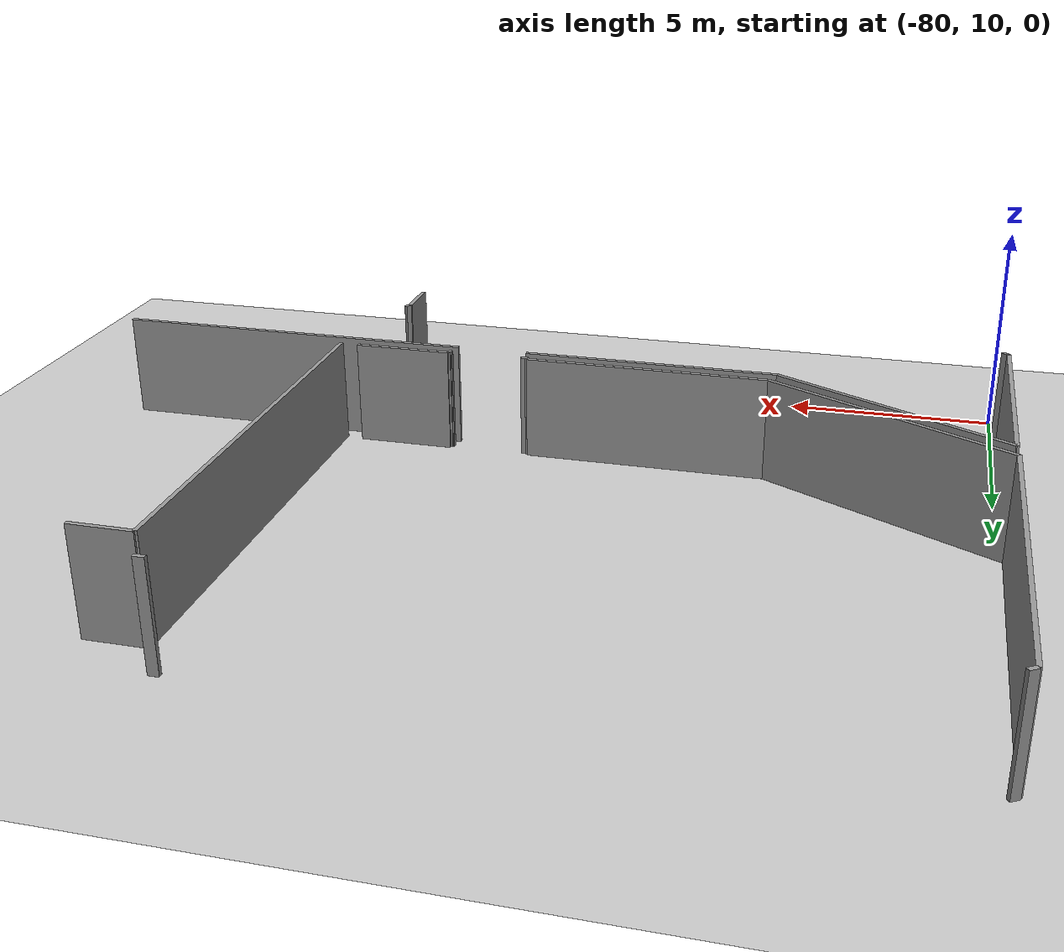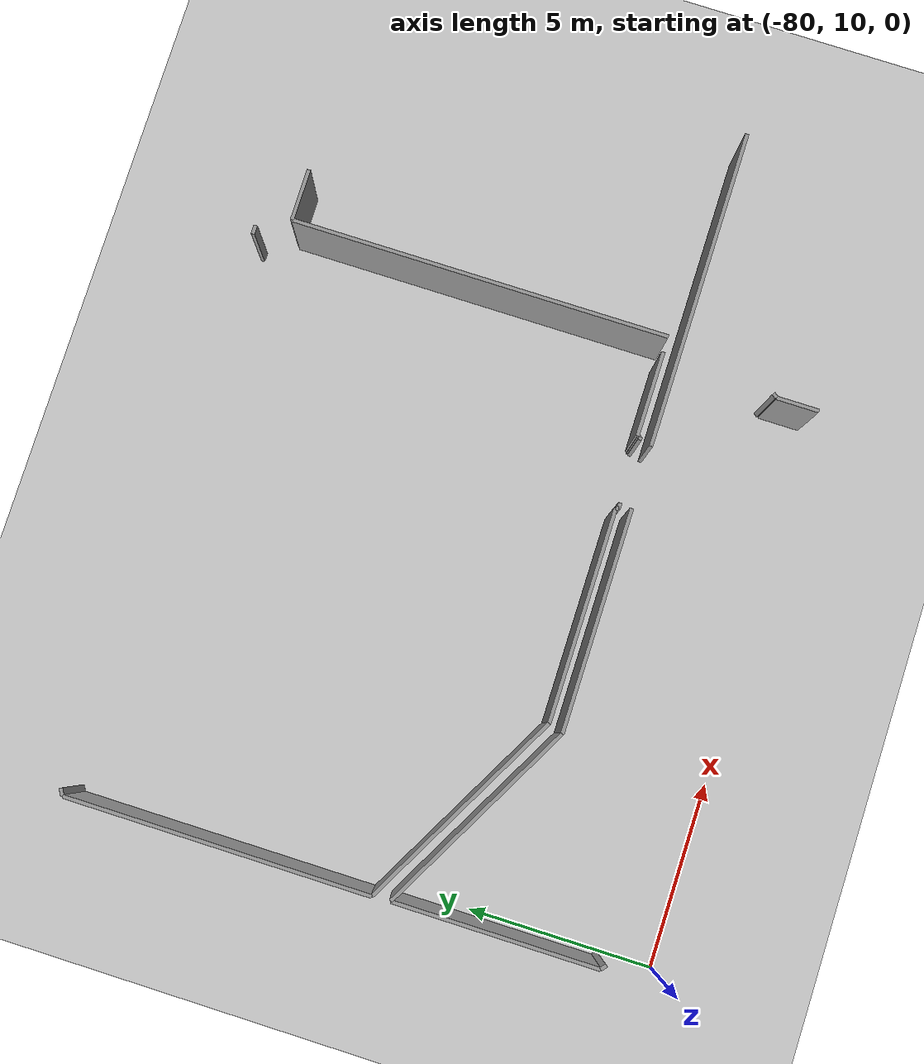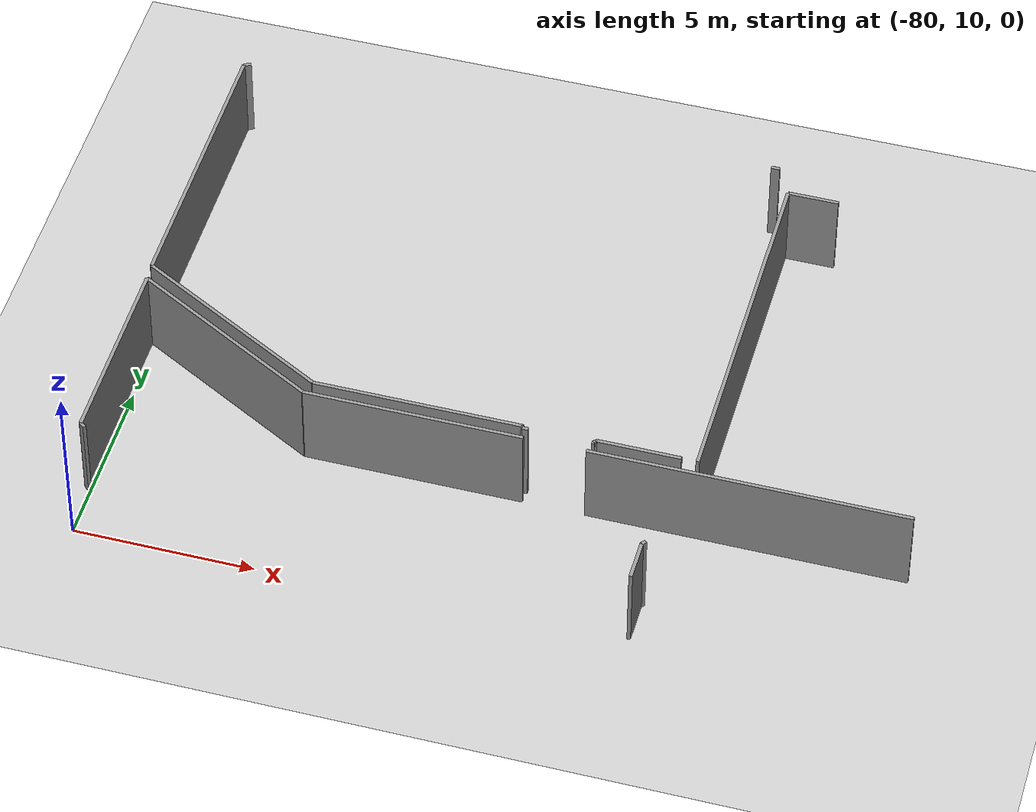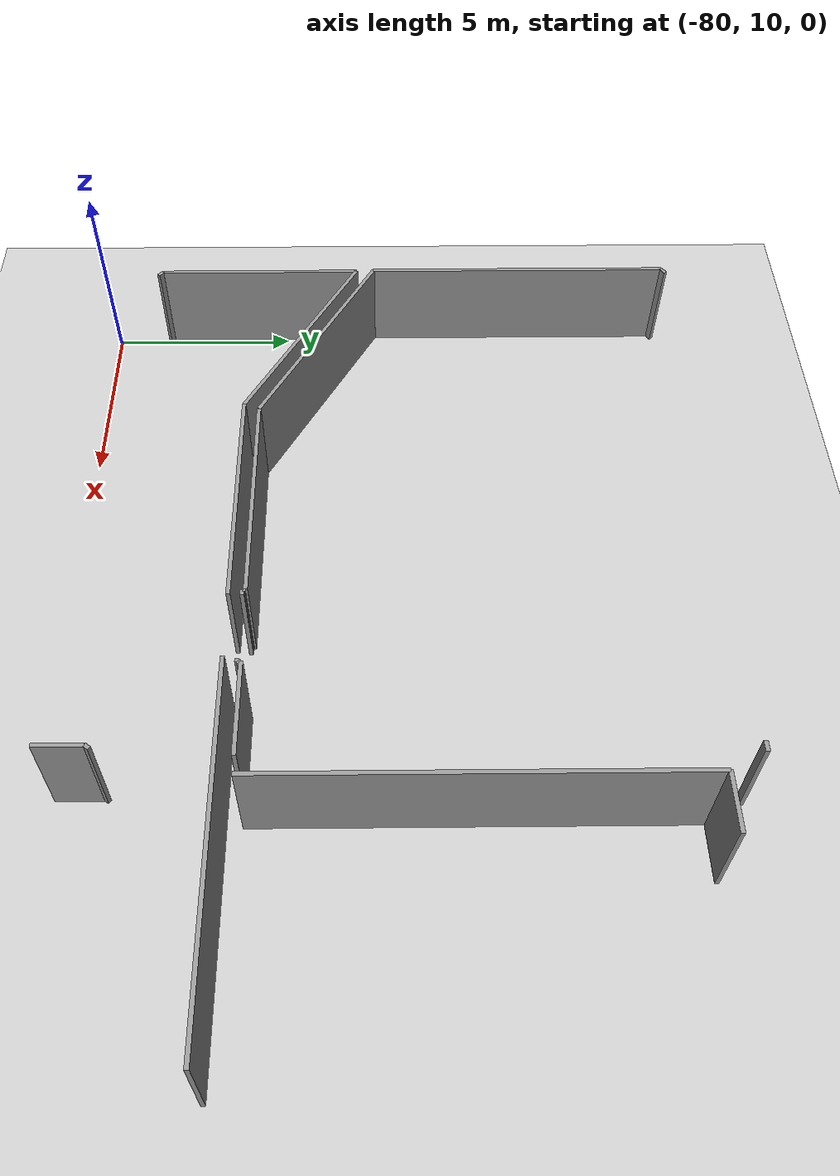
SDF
<sdf version="1.6">
 <world name="default">
  <model name="ground_plane">
   <static>1</static>
   <link name="link">
    <collision name="collision">
     <geometry><plane><normal>0 0 1</normal><size>100 100</size></plane></geometry>
     <surface><friction><ode><mu>100</mu><mu2>50</mu2></ode></friction></surface>
    </collision>
    <visual name="visual">
     <cast_shadows>0</cast_shadows>
     <geometry><plane><normal>0 0 1</normal><size>100 100</size></plane></geometry>
     <material>
      <script><uri>file://media/materials/scripts/gazebo.material</uri><name>Gazebo/Grey</name></script>
     </material>
    </visual>
   </link>
  </model>
  <model name="0510035737_A_40_1_105">
   <static>1</static>
   <link name="Wall_0">
    <collision name="Wall_0_Collision">
     <geometry><box><size>8.16879031489 0.1 2.5</size></box></geometry>
     <pose>4.08439515745 0 1.25 0 0 0</pose>
    </collision>
    <visual name="Wall_0_Visual">
     <pose>4.08439515745 0 1.25 0 0 0</pose>
     <geometry><box><size>8.16879031489 0.1 2.5</size></box></geometry>
     <material>
      <script><uri>file://media/materials/scripts/gazebo.material</uri><name>Gazebo/Grey</name></script>
      <ambient>1 1 1 1</ambient>
     </material>
    </visual>
    <pose>0.00254202281467 -28.3417749674 0 0 0 1.57079632679</pose>
   </link>
   <link name="Wall_1">
    <collision name="Wall_1_Collision">
     <geometry><box><size>0.208616457531 0.1 2.5</size></box></geometry>
     <pose>0.104308228766 0 1.25 0 0 0</pose>
    </collision>
    <visual name="Wall_1_Visual">
     <pose>0.104308228766 0 1.25 0 0 0</pose>
     <geometry><box><size>0.208616457531 0.1 2.5</size></box></geometry>
     <material>
      <script><uri>file://media/materials/scripts/gazebo.material</uri><name>Gazebo/Grey</name></script>
      <ambient>1 1 1 1</ambient>
     </material>
    </visual>
    <pose>0.00254202281467 -20.1729846525 0 0 0 0.551495327385</pose>
   </link>
   <link name="Wall_15">
    <collision name="Wall_15_Collision">
     <geometry><box><size>0.247593022147 0.1 2.5</size></box></geometry>
     <pose>0.123796511074 0 1.25 0 0 0</pose>
    </collision>
    <visual name="Wall_15_Visual">
     <pose>0.123796511074 0 1.25 0 0 0</pose>
     <geometry><box><size>0.247593022147 0.1 2.5</size></box></geometry>
     <material>
      <script><uri>file://media/materials/scripts/gazebo.material</uri><name>Gazebo/Grey</name></script>
      <ambient>1 1 1 1</ambient>
     </material>
    </visual>
    <pose>15.2353595374 -20.1452766039 0 0 0 0.0</pose>
   </link>
   <link name="Wall_17">
    <collision name="Wall_17_Collision">
     <geometry><box><size>2.31247815449 0.1 2.5</size></box></geometry>
     <pose>1.15623907725 0 1.25 0 0 0</pose>
    </collision>
    <visual name="Wall_17_Visual">
     <pose>1.15623907725 0 1.25 0 0 0</pose>
     <geometry><box><size>2.31247815449 0.1 2.5</size></box></geometry>
     <material>
      <script><uri>file://media/materials/scripts/gazebo.material</uri><name>Gazebo/Grey</name></script>
      <ambient>1 1 1 1</ambient>
     </material>
    </visual>
    <pose>15.4829525595 -31.2732356773 0 0 0 3.14159265359</pose>
   </link>
   <link name="Wall_18">
    <collision name="Wall_18_Collision">
     <geometry><box><size>0.087953989387 0.1 2.5</size></box></geometry>
     <pose>0.0439769946935 0 1.25 0 0 0</pose>
    </collision>
    <visual name="Wall_18_Visual">
     <pose>0.0439769946935 0 1.25 0 0 0</pose>
     <geometry><box><size>0.087953989387 0.1 2.5</size></box></geometry>
     <material>
      <script><uri>file://media/materials/scripts/gazebo.material</uri><name>Gazebo/Grey</name></script>
      <ambient>1 1 1 1</ambient>
     </material>
    </visual>
    <pose>13.170474405 -31.2732356773 0 0 0 -1.57079632679</pose>
   </link>
   <link name="Wall_19">
    <collision name="Wall_19_Collision">
     <geometry><box><size>0.0815989323504 0.1 2.5</size></box></geometry>
     <pose>0.0407994661752 0 1.25 0 0 0</pose>
    </collision>
    <visual name="Wall_19_Visual">
     <pose>0.0407994661752 0 1.25 0 0 0</pose>
     <geometry><box><size>0.0815989323504 0.1 2.5</size></box></geometry>
     <material>
      <script><uri>file://media/materials/scripts/gazebo.material</uri><name>Gazebo/Grey</name></script>
      <ambient>1 1 1 1</ambient>
     </material>
    </visual>
    <pose>13.170474405 -31.3611896667 0 0 0 3.14159265359</pose>
   </link>
   <link name="Wall_20">
    <collision name="Wall_20_Collision">
     <geometry><box><size>0.161164246449 0.1 2.5</size></box></geometry>
     <pose>0.0805821232246 0 1.25 0 0 0</pose>
    </collision>
    <visual name="Wall_20_Visual">
     <pose>0.0805821232246 0 1.25 0 0 0</pose>
     <geometry><box><size>0.161164246449 0.1 2.5</size></box></geometry>
     <material>
      <script><uri>file://media/materials/scripts/gazebo.material</uri><name>Gazebo/Grey</name></script>
      <ambient>1 1 1 1</ambient>
     </material>
    </visual>
    <pose>11.373264275 -31.3611896667 0 0 0 3.14159265359</pose>
   </link>
   <link name="Wall_21">
    <collision name="Wall_21_Collision">
     <geometry><box><size>0.0688888182771 0.1 2.5</size></box></geometry>
     <pose>0.0344444091386 0 1.25 0 0 0</pose>
    </collision>
    <visual name="Wall_21_Visual">
     <pose>0.0344444091386 0 1.25 0 0 0</pose>
     <geometry><box><size>0.0688888182771 0.1 2.5</size></box></geometry>
     <material>
      <script><uri>file://media/materials/scripts/gazebo.material</uri><name>Gazebo/Grey</name></script>
      <ambient>1 1 1 1</ambient>
     </material>
    </visual>
    <pose>11.2121000286 -31.3611896667 0 0 0 1.57079632679</pose>
   </link>
   <link name="Wall_22">
    <collision name="Wall_22_Collision">
     <geometry><box><size>5.75946109116 0.1 2.5</size></box></geometry>
     <pose>2.87973054558 0 1.25 0 0 0</pose>
    </collision>
    <visual name="Wall_22_Visual">
     <pose>2.87973054558 0 1.25 0 0 0</pose>
     <geometry><box><size>5.75946109116 0.1 2.5</size></box></geometry>
     <material>
      <script><uri>file://media/materials/scripts/gazebo.material</uri><name>Gazebo/Grey</name></script>
      <ambient>1 1 1 1</ambient>
     </material>
    </visual>
    <pose>11.2121000286 -31.2923008484 0 0 0 3.14159265359</pose>
   </link>
   <link name="Wall_23">
    <collision name="Wall_23_Collision">
     <geometry><box><size>6.19751235199 0.1 2.5</size></box></geometry>
     <pose>3.09875617599 0 1.25 0 0 0</pose>
    </collision>
    <visual name="Wall_23_Visual">
     <pose>3.09875617599 0 1.25 0 0 0</pose>
     <geometry><box><size>6.19751235199 0.1 2.5</size></box></geometry>
     <material>
      <script><uri>file://media/materials/scripts/gazebo.material</uri><name>Gazebo/Grey</name></script>
      <ambient>1 1 1 1</ambient>
     </material>
    </visual>
    <pose>5.45263893743 -31.2923008484 0 0 0 2.6453983167</pose>
   </link>
   <link name="Wall_24">
    <collision name="Wall_24_Collision">
     <geometry><box><size>10.2756188237 0.1 2.5</size></box></geometry>
     <pose>5.13780941184 0 1.25 0 0 0</pose>
    </collision>
    <visual name="Wall_24_Visual">
     <pose>5.13780941184 0 1.25 0 0 0</pose>
     <geometry><box><size>10.2756188237 0.1 2.5</size></box></geometry>
     <material>
      <script><uri>file://media/materials/scripts/gazebo.material</uri><name>Gazebo/Grey</name></script>
      <ambient>1 1 1 1</ambient>
     </material>
    </visual>
    <pose>15.9125544152 -31.2785739252 0 0 0 1.57079632679</pose>
   </link>
   <link name="Wall_25">
    <collision name="Wall_25_Collision">
     <geometry><box><size>1.41768612373 0.1 2.5</size></box></geometry>
     <pose>0.708843061866 0 1.25 0 0 0</pose>
    </collision>
    <visual name="Wall_25_Visual">
     <pose>0.708843061866 0 1.25 0 0 0</pose>
     <geometry><box><size>1.41768612373 0.1 2.5</size></box></geometry>
     <material>
      <script><uri>file://media/materials/scripts/gazebo.material</uri><name>Gazebo/Grey</name></script>
      <ambient>1 1 1 1</ambient>
     </material>
    </visual>
    <pose>15.9125544152 -21.0029551015 0 0 0 0.0</pose>
   </link>
   <link name="Wall_51">
    <collision name="Wall_51_Collision">
     <geometry><box><size>0.179732518247 0.1 2.5</size></box></geometry>
     <pose>0.0898662591237 0 1.25 0 0 0</pose>
    </collision>
    <visual name="Wall_51_Visual">
     <pose>0.0898662591237 0 1.25 0 0 0</pose>
     <geometry><box><size>0.179732518247 0.1 2.5</size></box></geometry>
     <material>
      <script><uri>file://media/materials/scripts/gazebo.material</uri><name>Gazebo/Grey</name></script>
      <ambient>1 1 1 1</ambient>
     </material>
    </visual>
    <pose>0.169552921737 -34.4228019446 0 0 0 2.45536558078</pose>
   </link>
   <link name="Wall_52">
    <collision name="Wall_52_Collision">
     <geometry><box><size>5.47983858155 0.1 2.5</size></box></geometry>
     <pose>2.73991929078 0 1.25 0 0 0</pose>
    </collision>
    <visual name="Wall_52_Visual">
     <pose>2.73991929078 0 1.25 0 0 0</pose>
     <geometry><box><size>5.47983858155 0.1 2.5</size></box></geometry>
     <material>
      <script><uri>file://media/materials/scripts/gazebo.material</uri><name>Gazebo/Grey</name></script>
      <ambient>1 1 1 1</ambient>
     </material>
    </visual>
    <pose>0.0305042737759 -34.3089193226 0 0 0 1.57079632679</pose>
   </link>
   <link name="Wall_53">
    <collision name="Wall_53_Collision">
     <geometry><box><size>5.99210899888 0.1 2.5</size></box></geometry>
     <pose>2.99605449944 0 1.25 0 0 0</pose>
    </collision>
    <visual name="Wall_53_Visual">
     <pose>2.99605449944 0 1.25 0 0 0</pose>
     <geometry><box><size>5.99210899888 0.1 2.5</size></box></geometry>
     <material>
      <script><uri>file://media/materials/scripts/gazebo.material</uri><name>Gazebo/Grey</name></script>
      <ambient>1 1 1 1</ambient>
     </material>
    </visual>
    <pose>0.0305042737759 -28.829080741 0 0 0 -0.496854835641</pose>
   </link>
   <link name="Wall_54">
    <collision name="Wall_54_Collision">
     <geometry><box><size>6.02866130724 0.1 2.5</size></box></geometry>
     <pose>3.01433065362 0 1.25 0 0 0</pose>
    </collision>
    <visual name="Wall_54_Visual">
     <pose>3.01433065362 0 1.25 0 0 0</pose>
     <geometry><box><size>6.02866130724 0.1 2.5</size></box></geometry>
     <material>
      <script><uri>file://media/materials/scripts/gazebo.material</uri><name>Gazebo/Grey</name></script>
      <ambient>1 1 1 1</ambient>
     </material>
    </visual>
    <pose>5.2980839503 -31.6852975755 0 0 0 0.0</pose>
   </link>
   <link name="Wall_55">
    <collision name="Wall_55_Collision">
     <geometry><box><size>8.72371389533 0.1 2.5</size></box></geometry>
     <pose>4.36185694767 0 1.25 0 0 0</pose>
    </collision>
    <visual name="Wall_55_Visual">
     <pose>4.36185694767 0 1.25 0 0 0</pose>
     <geometry><box><size>8.72371389533 0.1 2.5</size></box></geometry>
     <material>
      <script><uri>file://media/materials/scripts/gazebo.material</uri><name>Gazebo/Grey</name></script>
      <ambient>1 1 1 1</ambient>
     </material>
    </visual>
    <pose>13.0227828795 -31.6852975755 0 0 0 0.0</pose>
   </link>
   <link name="Wall_69">
    <collision name="Wall_69_Collision">
     <geometry><box><size>0.133161724535 0.1 2.5</size></box></geometry>
     <pose>0.0665808622676 0 1.25 0 0 0</pose>
    </collision>
    <visual name="Wall_69_Visual">
     <pose>0.0665808622676 0 1.25 0 0 0</pose>
     <geometry><box><size>0.133161724535 0.1 2.5</size></box></geometry>
     <material>
      <script><uri>file://media/materials/scripts/gazebo.material</uri><name>Gazebo/Grey</name></script>
      <ambient>1 1 1 1</ambient>
     </material>
    </visual>
    <pose>15.2940802644 -34.3000222427 0 0 0 -2.20169787326</pose>
   </link>
   <link name="Wall_70">
    <collision name="Wall_70_Collision">
     <geometry><box><size>1.14009723237 0.1 2.5</size></box></geometry>
     <pose>0.570048616186 0 1.25 0 0 0</pose>
    </collision>
    <visual name="Wall_70_Visual">
     <pose>0.570048616186 0 1.25 0 0 0</pose>
     <geometry><box><size>1.14009723237 0.1 2.5</size></box></geometry>
     <material>
      <script><uri>file://media/materials/scripts/gazebo.material</uri><name>Gazebo/Grey</name></script>
      <ambient>1 1 1 1</ambient>
     </material>
    </visual>
    <pose>15.2155317594 -34.4075498078 0 0 0 -1.57079632679</pose>
   </link>
   <pose>-80.2 45.8857980363 0 0 0 0</pose>
  </model>
 </world>
</sdf>
